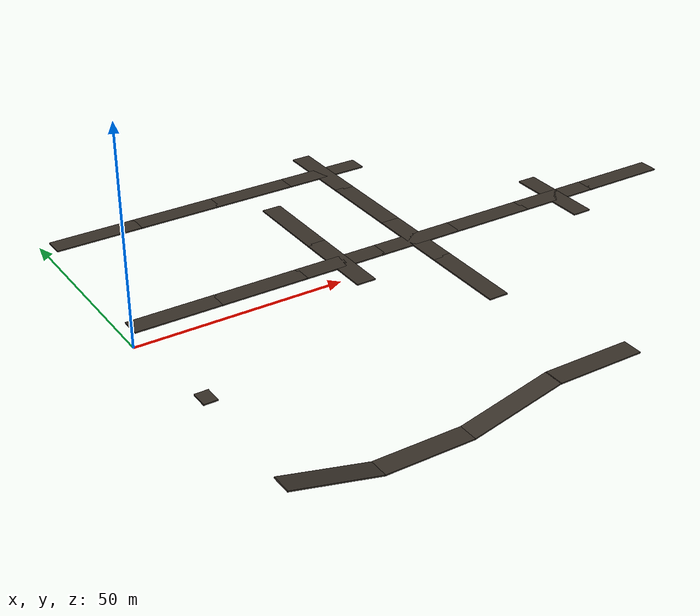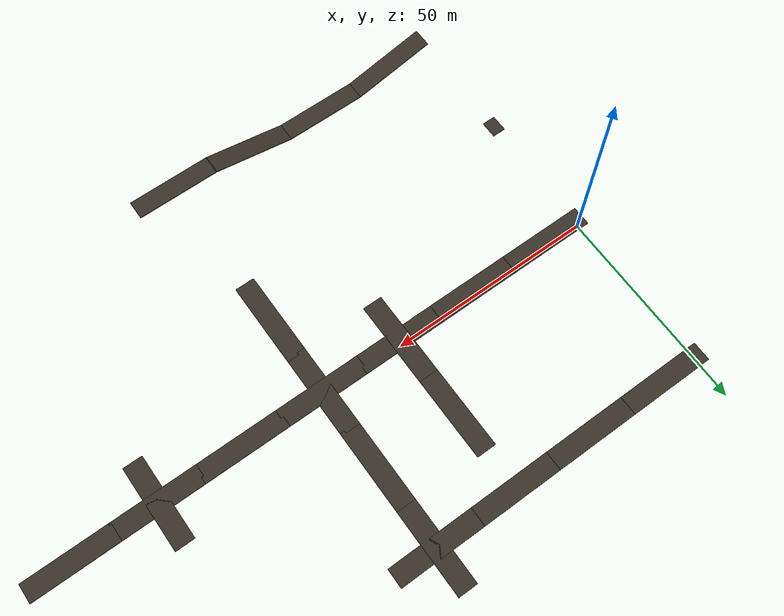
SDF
<sdf version="1.9">
 <world name="living_map">
  <model name="galleries_roof">
   <static>true</static>
   <link name="r0">
    <pose>10.0 0.0 4.95 0 0 0</pose>
    <visual name="v">
     <geometry><box><size>20.6 4.6 0.3</size></box></geometry>
     <material>
      <ambient>0.22 0.19 0.16 1</ambient>
      <diffuse>0.22 0.19 0.16 1</diffuse>
      <specular>0.05 0.05 0.05 1</specular>
      <pbr>
       <metal>
        <albedo_map>model://lm_rock/materials/textures/rock.png</albedo_map>
        <roughness>0.95</roughness>
        <metalness>0.0</metalness>
       </metal>
      </pbr>
     </material>
    </visual>
   </link>
   <link name="r1">
    <pose>30.0 0.0 4.95 0 0 0</pose>
    <visual name="v">
     <geometry><box><size>20.6 4.6 0.3</size></box></geometry>
     <material>
      <ambient>0.22 0.19 0.16 1</ambient>
      <diffuse>0.22 0.19 0.16 1</diffuse>
      <specular>0.05 0.05 0.05 1</specular>
      <pbr>
       <metal>
        <albedo_map>model://lm_rock/materials/textures/rock.png</albedo_map>
        <roughness>0.95</roughness>
        <metalness>0.0</metalness>
       </metal>
      </pbr>
     </material>
    </visual>
   </link>
   <link name="r2">
    <pose>50.0 0.0 4.95 0 0 0</pose>
    <visual name="v">
     <geometry><box><size>20.6 4.6 0.3</size></box></geometry>
     <material>
      <ambient>0.22 0.19 0.16 1</ambient>
      <diffuse>0.22 0.19 0.16 1</diffuse>
      <specular>0.05 0.05 0.05 1</specular>
      <pbr>
       <metal>
        <albedo_map>model://lm_rock/materials/textures/rock.png</albedo_map>
        <roughness>0.95</roughness>
        <metalness>0.0</metalness>
       </metal>
      </pbr>
     </material>
    </visual>
   </link>
   <link name="r3">
    <pose>50.0 0.0 4.95 0 0 0</pose>
    <visual name="v">
     <geometry><box><size>4.6 20.6 0.3</size></box></geometry>
     <material>
      <ambient>0.22 0.19 0.16 1</ambient>
      <diffuse>0.22 0.19 0.16 1</diffuse>
      <specular>0.05 0.05 0.05 1</specular>
      <pbr>
       <metal>
        <albedo_map>model://lm_rock/materials/textures/rock.png</albedo_map>
        <roughness>0.95</roughness>
        <metalness>0.0</metalness>
       </metal>
      </pbr>
     </material>
    </visual>
   </link>
   <link name="r4">
    <pose>50.0 20.0 4.95 0 0 0</pose>
    <visual name="v">
     <geometry><box><size>4.6 20.6 0.3</size></box></geometry>
     <material>
      <ambient>0.22 0.19 0.16 1</ambient>
      <diffuse>0.22 0.19 0.16 1</diffuse>
      <specular>0.05 0.05 0.05 1</specular>
      <pbr>
       <metal>
        <albedo_map>model://lm_rock/materials/textures/rock.png</albedo_map>
        <roughness>0.95</roughness>
        <metalness>0.0</metalness>
       </metal>
      </pbr>
     </material>
    </visual>
   </link>
   <link name="r5">
    <pose>70.0 0.0 4.95 0 0 0</pose>
    <visual name="v">
     <geometry><box><size>20.6 4.6 0.3</size></box></geometry>
     <material>
      <ambient>0.22 0.19 0.16 1</ambient>
      <diffuse>0.22 0.19 0.16 1</diffuse>
      <specular>0.05 0.05 0.05 1</specular>
      <pbr>
       <metal>
        <albedo_map>model://lm_rock/materials/textures/rock.png</albedo_map>
        <roughness>0.95</roughness>
        <metalness>0.0</metalness>
       </metal>
      </pbr>
     </material>
    </visual>
   </link>
   <link name="r6">
    <pose>70.0 0.0 4.95 0 0 0</pose>
    <visual name="v">
     <geometry><box><size>4.6 20.6 0.3</size></box></geometry>
     <material>
      <ambient>0.22 0.19 0.16 1</ambient>
      <diffuse>0.22 0.19 0.16 1</diffuse>
      <specular>0.05 0.05 0.05 1</specular>
      <pbr>
       <metal>
        <albedo_map>model://lm_rock/materials/textures/rock.png</albedo_map>
        <roughness>0.95</roughness>
        <metalness>0.0</metalness>
       </metal>
      </pbr>
     </material>
    </visual>
   </link>
   <link name="r7">
    <pose>70.0 -20.0 4.95 0 0 0</pose>
    <visual name="v">
     <geometry><box><size>4.6 20.6 0.3</size></box></geometry>
     <material>
      <ambient>0.22 0.19 0.16 1</ambient>
      <diffuse>0.22 0.19 0.16 1</diffuse>
      <specular>0.05 0.05 0.05 1</specular>
      <pbr>
       <metal>
        <albedo_map>model://lm_rock/materials/textures/rock.png</albedo_map>
        <roughness>0.95</roughness>
        <metalness>0.0</metalness>
       </metal>
      </pbr>
     </material>
    </visual>
   </link>
   <link name="r8">
    <pose>70.0 20.0 4.95 0 0 0</pose>
    <visual name="v">
     <geometry><box><size>4.6 20.6 0.3</size></box></geometry>
     <material>
      <ambient>0.22 0.19 0.16 1</ambient>
      <diffuse>0.22 0.19 0.16 1</diffuse>
      <specular>0.05 0.05 0.05 1</specular>
      <pbr>
       <metal>
        <albedo_map>model://lm_rock/materials/textures/rock.png</albedo_map>
        <roughness>0.95</roughness>
        <metalness>0.0</metalness>
       </metal>
      </pbr>
     </material>
    </visual>
   </link>
   <link name="r9">
    <pose>90.0 0.0 4.95 0 0 0</pose>
    <visual name="v">
     <geometry><box><size>20.6 4.6 0.3</size></box></geometry>
     <material>
      <ambient>0.22 0.19 0.16 1</ambient>
      <diffuse>0.22 0.19 0.16 1</diffuse>
      <specular>0.05 0.05 0.05 1</specular>
      <pbr>
       <metal>
        <albedo_map>model://lm_rock/materials/textures/rock.png</albedo_map>
        <roughness>0.95</roughness>
        <metalness>0.0</metalness>
       </metal>
      </pbr>
     </material>
    </visual>
   </link>
   <link name="r10">
    <pose>110.0 0.0 4.95 0 0 0</pose>
    <visual name="v">
     <geometry><box><size>20.6 4.6 0.3</size></box></geometry>
     <material>
      <ambient>0.22 0.19 0.16 1</ambient>
      <diffuse>0.22 0.19 0.16 1</diffuse>
      <specular>0.05 0.05 0.05 1</specular>
      <pbr>
       <metal>
        <albedo_map>model://lm_rock/materials/textures/rock.png</albedo_map>
        <roughness>0.95</roughness>
        <metalness>0.0</metalness>
       </metal>
      </pbr>
     </material>
    </visual>
   </link>
   <link name="r11">
    <pose>110.0 0.0 4.95 0 0 0</pose>
    <visual name="v">
     <geometry><box><size>4.6 20.6 0.3</size></box></geometry>
     <material>
      <ambient>0.22 0.19 0.16 1</ambient>
      <diffuse>0.22 0.19 0.16 1</diffuse>
      <specular>0.05 0.05 0.05 1</specular>
      <pbr>
       <metal>
        <albedo_map>model://lm_rock/materials/textures/rock.png</albedo_map>
        <roughness>0.95</roughness>
        <metalness>0.0</metalness>
       </metal>
      </pbr>
     </material>
    </visual>
   </link>
   <link name="r12">
    <pose>130.0 0.0 4.95 0 0 0</pose>
    <visual name="v">
     <geometry><box><size>20.6 4.6 0.3</size></box></geometry>
     <material>
      <ambient>0.22 0.19 0.16 1</ambient>
      <diffuse>0.22 0.19 0.16 1</diffuse>
      <specular>0.05 0.05 0.05 1</specular>
      <pbr>
       <metal>
        <albedo_map>model://lm_rock/materials/textures/rock.png</albedo_map>
        <roughness>0.95</roughness>
        <metalness>0.0</metalness>
       </metal>
      </pbr>
     </material>
    </visual>
   </link>
   <link name="r13">
    <pose>10.0 40.0 4.95 0 0 0</pose>
    <visual name="v">
     <geometry><box><size>20.6 4.6 0.3</size></box></geometry>
     <material>
      <ambient>0.22 0.19 0.16 1</ambient>
      <diffuse>0.22 0.19 0.16 1</diffuse>
      <specular>0.05 0.05 0.05 1</specular>
      <pbr>
       <metal>
        <albedo_map>model://lm_rock/materials/textures/rock.png</albedo_map>
        <roughness>0.95</roughness>
        <metalness>0.0</metalness>
       </metal>
      </pbr>
     </material>
    </visual>
   </link>
   <link name="r14">
    <pose>30.0 40.0 4.95 0 0 0</pose>
    <visual name="v">
     <geometry><box><size>20.6 4.6 0.3</size></box></geometry>
     <material>
      <ambient>0.22 0.19 0.16 1</ambient>
      <diffuse>0.22 0.19 0.16 1</diffuse>
      <specular>0.05 0.05 0.05 1</specular>
      <pbr>
       <metal>
        <albedo_map>model://lm_rock/materials/textures/rock.png</albedo_map>
        <roughness>0.95</roughness>
        <metalness>0.0</metalness>
       </metal>
      </pbr>
     </material>
    </visual>
   </link>
   <link name="r15">
    <pose>50.0 40.0 4.95 0 0 0</pose>
    <visual name="v">
     <geometry><box><size>20.6 4.6 0.3</size></box></geometry>
     <material>
      <ambient>0.22 0.19 0.16 1</ambient>
      <diffuse>0.22 0.19 0.16 1</diffuse>
      <specular>0.05 0.05 0.05 1</specular>
      <pbr>
       <metal>
        <albedo_map>model://lm_rock/materials/textures/rock.png</albedo_map>
        <roughness>0.95</roughness>
        <metalness>0.0</metalness>
       </metal>
      </pbr>
     </material>
    </visual>
   </link>
   <link name="r16">
    <pose>70.0 40.0 4.95 0 0 0</pose>
    <visual name="v">
     <geometry><box><size>20.6 4.6 0.3</size></box></geometry>
     <material>
      <ambient>0.22 0.19 0.16 1</ambient>
      <diffuse>0.22 0.19 0.16 1</diffuse>
      <specular>0.05 0.05 0.05 1</specular>
      <pbr>
       <metal>
        <albedo_map>model://lm_rock/materials/textures/rock.png</albedo_map>
        <roughness>0.95</roughness>
        <metalness>0.0</metalness>
       </metal>
      </pbr>
     </material>
    </visual>
   </link>
   <link name="r17">
    <pose>70.0 40.0 4.95 0 0 0</pose>
    <visual name="v">
     <geometry><box><size>4.6 20.6 0.3</size></box></geometry>
     <material>
      <ambient>0.22 0.19 0.16 1</ambient>
      <diffuse>0.22 0.19 0.16 1</diffuse>
      <specular>0.05 0.05 0.05 1</specular>
      <pbr>
       <metal>
        <albedo_map>model://lm_rock/materials/textures/rock.png</albedo_map>
        <roughness>0.95</roughness>
        <metalness>0.0</metalness>
       </metal>
      </pbr>
     </material>
    </visual>
   </link>
   <link name="r22">
    <pose>1.25 -30.0 4.95 0 0 0</pose>
    <visual name="v">
     <geometry><box><size>3.1 3.9999999999999987 0.3</size></box></geometry>
     <material>
      <ambient>0.22 0.19 0.16 1</ambient>
      <diffuse>0.22 0.19 0.16 1</diffuse>
      <specular>0.05 0.05 0.05 1</specular>
      <pbr>
       <metal>
        <albedo_map>model://lm_rock/materials/textures/rock.png</albedo_map>
        <roughness>0.95</roughness>
        <metalness>0.0</metalness>
       </metal>
      </pbr>
     </material>
    </visual>
   </link>
   <link name="cr0">
    <pose>10 -60 2.5 0 0.2450 0</pose>
    <visual name="v">
     <geometry><box><size>20.815528128088303 4.6 0.3</size></box></geometry>
     <material>
      <ambient>0.22 0.19 0.16 1</ambient>
      <diffuse>0.22 0.19 0.16 1</diffuse>
      <specular>0.05 0.05 0.05 1</specular>
      <pbr>
       <metal>
        <albedo_map>model://lm_rock/materials/textures/rock.png</albedo_map>
        <roughness>0.95</roughness>
        <metalness>0.0</metalness>
       </metal>
      </pbr>
     </material>
    </visual>
   </link>
   <link name="cr1">
    <pose>30 -60 0.0 0 0.0000 0</pose>
    <visual name="v">
     <geometry><box><size>20.2 4.6 0.3</size></box></geometry>
     <material>
      <ambient>0.22 0.19 0.16 1</ambient>
      <diffuse>0.22 0.19 0.16 1</diffuse>
      <specular>0.05 0.05 0.05 1</specular>
      <pbr>
       <metal>
        <albedo_map>model://lm_rock/materials/textures/rock.png</albedo_map>
        <roughness>0.95</roughness>
        <metalness>0.0</metalness>
       </metal>
      </pbr>
     </material>
    </visual>
   </link>
   <link name="cr2">
    <pose>50 -60 2.5 0 -0.2450 0</pose>
    <visual name="v">
     <geometry><box><size>20.815528128088303 4.6 0.3</size></box></geometry>
     <material>
      <ambient>0.22 0.19 0.16 1</ambient>
      <diffuse>0.22 0.19 0.16 1</diffuse>
      <specular>0.05 0.05 0.05 1</specular>
      <pbr>
       <metal>
        <albedo_map>model://lm_rock/materials/textures/rock.png</albedo_map>
        <roughness>0.95</roughness>
        <metalness>0.0</metalness>
       </metal>
      </pbr>
     </material>
    </visual>
   </link>
   <link name="cr3">
    <pose>70 -60 5.0 0 0.0000 0</pose>
    <visual name="v">
     <geometry><box><size>20.2 4.6 0.3</size></box></geometry>
     <material>
      <ambient>0.22 0.19 0.16 1</ambient>
      <diffuse>0.22 0.19 0.16 1</diffuse>
      <specular>0.05 0.05 0.05 1</specular>
      <pbr>
       <metal>
        <albedo_map>model://lm_rock/materials/textures/rock.png</albedo_map>
        <roughness>0.95</roughness>
        <metalness>0.0</metalness>
       </metal>
      </pbr>
     </material>
    </visual>
   </link>
  </model>
 </world>
</sdf>
